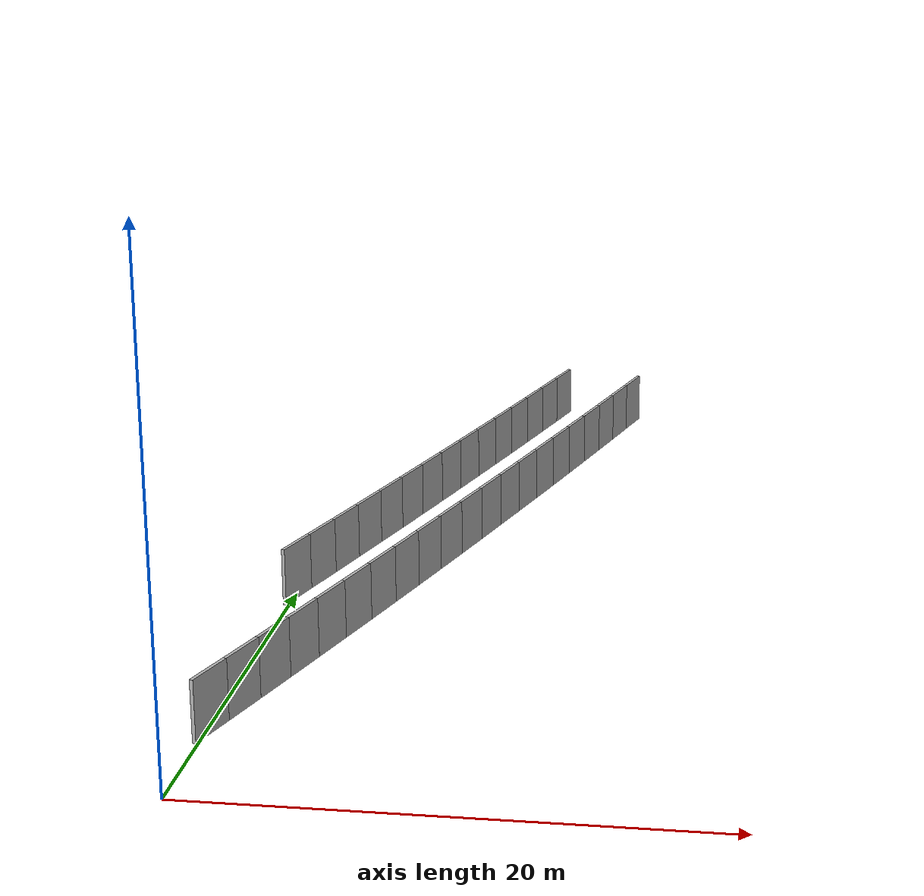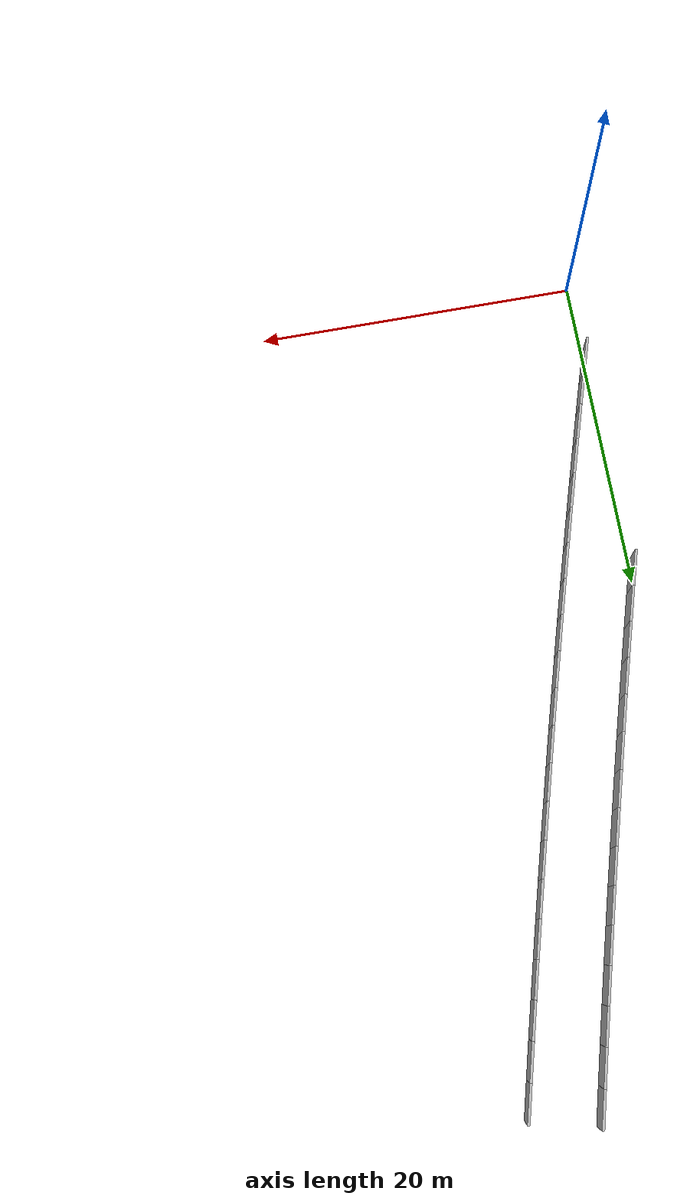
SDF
<?xml version="1.0" ?>
<sdf version="1.6">
  <model name="sps_4619">
    <pose frame="">0 0 0 0 -0 0</pose>
    <static>1</static>
    <self_collide>0</self_collide>
    <allow_auto_disable>0</allow_auto_disable>
    <link name="Wall4421">
      <kinematic>0</kinematic>
      <gravity>1</gravity>
      <self_collide>0</self_collide>
      <collision name="collision">
        <geometry>
          <box>
            <size>2.25479 0.15 2.5</size>
          </box>
        </geometry>
        <pose frame="">0 0 0 0 -0 0</pose>
      </collision>
      <visual name="visual">
        <geometry>
          <box>
            <size>2.25479 0.15 2.5</size>
          </box>
        </geometry>
        <pose frame="">0 0 0 0 -0 0</pose>
        <cast_shadows>1</cast_shadows>
        <transparency>0.0</transparency>
      </visual>
      <pose frame="">0.170951 5.57719 1.25 0 -0 1.27103</pose>
    </link>
    <link name="Wall4422">
      <kinematic>0</kinematic>
      <gravity>1</gravity>
      <self_collide>0</self_collide>
      <collision name="collision">
        <geometry>
          <box>
            <size>2.25459 0.15 2.5</size>
          </box>
        </geometry>
        <pose frame="">0 0 0 0 -0 0</pose>
      </collision>
      <visual name="visual">
        <geometry>
          <box>
            <size>2.25459 0.15 2.5</size>
          </box>
        </geometry>
        <pose frame="">0 0 0 0 -0 0</pose>
        <cast_shadows>1</cast_shadows>
        <transparency>0.0</transparency>
      </visual>
      <pose frame="">0.833976 7.73219 1.25 0 -0 1.27361</pose>
    </link>
    <link name="Wall4423">
      <kinematic>0</kinematic>
      <gravity>1</gravity>
      <self_collide>0</self_collide>
      <collision name="collision">
        <geometry>
          <box>
            <size>2.25476 0.15 2.5</size>
          </box>
        </geometry>
        <pose frame="">0 0 0 0 -0 0</pose>
      </collision>
      <visual name="visual">
        <geometry>
          <box>
            <size>2.25476 0.15 2.5</size>
          </box>
        </geometry>
        <pose frame="">0 0 0 0 -0 0</pose>
        <cast_shadows>1</cast_shadows>
        <transparency>0.0</transparency>
      </visual>
      <pose frame="">1.49178 9.88878 1.25 0 -0 1.27587</pose>
    </link>
    <link name="Wall4424">
      <kinematic>0</kinematic>
      <gravity>1</gravity>
      <self_collide>0</self_collide>
      <collision name="collision">
        <geometry>
          <box>
            <size>2.25459 0.15 2.5</size>
          </box>
        </geometry>
        <pose frame="">0 0 0 0 -0 0</pose>
      </collision>
      <visual name="visual">
        <geometry>
          <box>
            <size>2.25459 0.15 2.5</size>
          </box>
        </geometry>
        <pose frame="">0 0 0 0 -0 0</pose>
        <cast_shadows>1</cast_shadows>
        <transparency>0.0</transparency>
      </visual>
      <pose frame="">2.14455 12.0469 1.25 0 -0 1.27828</pose>
    </link>
    <link name="Wall4425">
      <kinematic>0</kinematic>
      <gravity>1</gravity>
      <self_collide>0</self_collide>
      <collision name="collision">
        <geometry>
          <box>
            <size>2.25451 0.15 2.5</size>
          </box>
        </geometry>
        <pose frame="">0 0 0 0 -0 0</pose>
      </collision>
      <visual name="visual">
        <geometry>
          <box>
            <size>2.25451 0.15 2.5</size>
          </box>
        </geometry>
        <pose frame="">0 0 0 0 -0 0</pose>
        <cast_shadows>1</cast_shadows>
        <transparency>0.0</transparency>
      </visual>
      <pose frame="">2.79223 14.2064 1.25 0 -0 1.28056</pose>
    </link>
    <link name="Wall4426">
      <kinematic>0</kinematic>
      <gravity>1</gravity>
      <self_collide>0</self_collide>
      <collision name="collision">
        <geometry>
          <box>
            <size>2.25473 0.15 2.5</size>
          </box>
        </geometry>
        <pose frame="">0 0 0 0 -0 0</pose>
      </collision>
      <visual name="visual">
        <geometry>
          <box>
            <size>2.25473 0.15 2.5</size>
          </box>
        </geometry>
        <pose frame="">0 0 0 0 -0 0</pose>
        <cast_shadows>1</cast_shadows>
        <transparency>0.0</transparency>
      </visual>
      <pose frame="">3.43484 16.3675 1.25 0 -0 1.28299</pose>
    </link>
    <link name="Wall4427">
      <kinematic>0</kinematic>
      <gravity>1</gravity>
      <self_collide>0</self_collide>
      <collision name="collision">
        <geometry>
          <box>
            <size>2.25454 0.15 2.5</size>
          </box>
        </geometry>
        <pose frame="">0 0 0 0 -0 0</pose>
      </collision>
      <visual name="visual">
        <geometry>
          <box>
            <size>2.25454 0.15 2.5</size>
          </box>
        </geometry>
        <pose frame="">0 0 0 0 -0 0</pose>
        <cast_shadows>1</cast_shadows>
        <transparency>0.0</transparency>
      </visual>
      <pose frame="">4.07214 18.5302 1.25 0 -0 1.28547</pose>
    </link>
    <link name="Wall4428">
      <kinematic>0</kinematic>
      <gravity>1</gravity>
      <self_collide>0</self_collide>
      <collision name="collision">
        <geometry>
          <box>
            <size>2.25473 0.15 2.5</size>
          </box>
        </geometry>
        <pose frame="">0 0 0 0 -0 0</pose>
      </collision>
      <visual name="visual">
        <geometry>
          <box>
            <size>2.25473 0.15 2.5</size>
          </box>
        </geometry>
        <pose frame="">0 0 0 0 -0 0</pose>
        <cast_shadows>1</cast_shadows>
        <transparency>0.0</transparency>
      </visual>
      <pose frame="">4.70434 20.6944 1.25 0 -0 1.2877</pose>
    </link>
    <link name="Wall4429">
      <kinematic>0</kinematic>
      <gravity>1</gravity>
      <self_collide>0</self_collide>
      <collision name="collision">
        <geometry>
          <box>
            <size>2.25463 0.15 2.5</size>
          </box>
        </geometry>
        <pose frame="">0 0 0 0 -0 0</pose>
      </collision>
      <visual name="visual">
        <geometry>
          <box>
            <size>2.25463 0.15 2.5</size>
          </box>
        </geometry>
        <pose frame="">0 0 0 0 -0 0</pose>
        <cast_shadows>1</cast_shadows>
        <transparency>0.0</transparency>
      </visual>
      <pose frame="">5.33144 22.8601 1.25 0 -0 1.29019</pose>
    </link>
    <link name="Wall4430">
      <kinematic>0</kinematic>
      <gravity>1</gravity>
      <self_collide>0</self_collide>
      <collision name="collision">
        <geometry>
          <box>
            <size>2.25473 0.15 2.5</size>
          </box>
        </geometry>
        <pose frame="">0 0 0 0 -0 0</pose>
      </collision>
      <visual name="visual">
        <geometry>
          <box>
            <size>2.25473 0.15 2.5</size>
          </box>
        </geometry>
        <pose frame="">0 0 0 0 -0 0</pose>
        <cast_shadows>1</cast_shadows>
        <transparency>0.0</transparency>
      </visual>
      <pose frame="">5.95336 25.0273 1.25 0 -0 1.29249</pose>
    </link>
    <link name="Wall4431">
      <kinematic>0</kinematic>
      <gravity>1</gravity>
      <self_collide>0</self_collide>
      <collision name="collision">
        <geometry>
          <box>
            <size>2.25452 0.15 2.5</size>
          </box>
        </geometry>
        <pose frame="">0 0 0 0 -0 0</pose>
      </collision>
      <visual name="visual">
        <geometry>
          <box>
            <size>2.25452 0.15 2.5</size>
          </box>
        </geometry>
        <pose frame="">0 0 0 0 -0 0</pose>
        <cast_shadows>1</cast_shadows>
        <transparency>0.0</transparency>
      </visual>
      <pose frame="">6.57027 27.1959 1.25 0 -0 1.29479</pose>
    </link>
    <link name="Wall4432">
      <kinematic>0</kinematic>
      <gravity>1</gravity>
      <self_collide>0</self_collide>
      <collision name="collision">
        <geometry>
          <box>
            <size>2.25476 0.15 2.5</size>
          </box>
        </geometry>
        <pose frame="">0 0 0 0 -0 0</pose>
      </collision>
      <visual name="visual">
        <geometry>
          <box>
            <size>2.25476 0.15 2.5</size>
          </box>
        </geometry>
        <pose frame="">0 0 0 0 -0 0</pose>
        <cast_shadows>1</cast_shadows>
        <transparency>0.0</transparency>
      </visual>
      <pose frame="">7.18185 29.366 1.25 0 -0 1.29741</pose>
    </link>
    <link name="Wall4433">
      <kinematic>0</kinematic>
      <gravity>1</gravity>
      <self_collide>0</self_collide>
      <collision name="collision">
        <geometry>
          <box>
            <size>2.25459 0.15 2.5</size>
          </box>
        </geometry>
        <pose frame="">0 0 0 0 -0 0</pose>
      </collision>
      <visual name="visual">
        <geometry>
          <box>
            <size>2.25459 0.15 2.5</size>
          </box>
        </geometry>
        <pose frame="">0 0 0 0 -0 0</pose>
        <cast_shadows>1</cast_shadows>
        <transparency>0.0</transparency>
      </visual>
      <pose frame="">7.78823 31.5376 1.25 0 -0 1.29958</pose>
    </link>
    <link name="Wall4434">
      <kinematic>0</kinematic>
      <gravity>1</gravity>
      <self_collide>0</self_collide>
      <collision name="collision">
        <geometry>
          <box>
            <size>2.25457 0.15 2.5</size>
          </box>
        </geometry>
        <pose frame="">0 0 0 0 -0 0</pose>
      </collision>
      <visual name="visual">
        <geometry>
          <box>
            <size>2.25457 0.15 2.5</size>
          </box>
        </geometry>
        <pose frame="">0 0 0 0 -0 0</pose>
        <cast_shadows>1</cast_shadows>
        <transparency>0.0</transparency>
      </visual>
      <pose frame="">8.38955 33.7105 1.25 0 -0 1.30205</pose>
    </link>
    <link name="Wall4435">
      <kinematic>0</kinematic>
      <gravity>1</gravity>
      <self_collide>0</self_collide>
      <collision name="collision">
        <geometry>
          <box>
            <size>2.25435 0.15 2.5</size>
          </box>
        </geometry>
        <pose frame="">0 0 0 0 -0 0</pose>
      </collision>
      <visual name="visual">
        <geometry>
          <box>
            <size>2.25435 0.15 2.5</size>
          </box>
        </geometry>
        <pose frame="">0 0 0 0 -0 0</pose>
        <cast_shadows>1</cast_shadows>
        <transparency>0.0</transparency>
      </visual>
      <pose frame="">8.98565 35.8847 1.25 0 -0 1.30436</pose>
    </link>
    <link name="Wall4436">
      <kinematic>0</kinematic>
      <gravity>1</gravity>
      <self_collide>0</self_collide>
      <collision name="collision">
        <geometry>
          <box>
            <size>2.25471 0.15 2.5</size>
          </box>
        </geometry>
        <pose frame="">0 0 0 0 -0 0</pose>
      </collision>
      <visual name="visual">
        <geometry>
          <box>
            <size>2.25471 0.15 2.5</size>
          </box>
        </geometry>
        <pose frame="">0 0 0 0 -0 0</pose>
        <cast_shadows>1</cast_shadows>
        <transparency>0.0</transparency>
      </visual>
      <pose frame="">9.57665 38.0604 1.25 0 -0 1.30676</pose>
    </link>
    <link name="Wall4437">
      <kinematic>0</kinematic>
      <gravity>1</gravity>
      <self_collide>0</self_collide>
      <collision name="collision">
        <geometry>
          <box>
            <size>2.25466 0.15 2.5</size>
          </box>
        </geometry>
        <pose frame="">0 0 0 0 -0 0</pose>
      </collision>
      <visual name="visual">
        <geometry>
          <box>
            <size>2.25466 0.15 2.5</size>
          </box>
        </geometry>
        <pose frame="">0 0 0 0 -0 0</pose>
        <cast_shadows>1</cast_shadows>
        <transparency>0.0</transparency>
      </visual>
      <pose frame="">10.1624 40.2377 1.25 0 -0 1.30925</pose>
    </link>
    <link name="Wall4438">
      <kinematic>0</kinematic>
      <gravity>1</gravity>
      <self_collide>0</self_collide>
      <collision name="collision">
        <geometry>
          <box>
            <size>2.25455 0.15 2.5</size>
          </box>
        </geometry>
        <pose frame="">0 0 0 0 -0 0</pose>
      </collision>
      <visual name="visual">
        <geometry>
          <box>
            <size>2.25455 0.15 2.5</size>
          </box>
        </geometry>
        <pose frame="">0 0 0 0 -0 0</pose>
        <cast_shadows>1</cast_shadows>
        <transparency>0.0</transparency>
      </visual>
      <pose frame="">10.7429 42.4163 1.25 0 -0 1.31153</pose>
    </link>
    <link name="Wall4439">
      <kinematic>0</kinematic>
      <gravity>1</gravity>
      <self_collide>0</self_collide>
      <collision name="collision">
        <geometry>
          <box>
            <size>2.25457 0.15 2.5</size>
          </box>
        </geometry>
        <pose frame="">0 0 0 0 -0 0</pose>
      </collision>
      <visual name="visual">
        <geometry>
          <box>
            <size>2.25457 0.15 2.5</size>
          </box>
        </geometry>
        <pose frame="">0 0 0 0 -0 0</pose>
        <cast_shadows>1</cast_shadows>
        <transparency>0.0</transparency>
      </visual>
      <pose frame="">11.3183 44.5962 1.25 0 -0 1.31394</pose>
    </link>
    <link name="Wall4440">
      <kinematic>0</kinematic>
      <gravity>1</gravity>
      <self_collide>0</self_collide>
      <collision name="collision">
        <geometry>
          <box>
            <size>2.25463 0.15 2.5</size>
          </box>
        </geometry>
        <pose frame="">0 0 0 0 -0 0</pose>
      </collision>
      <visual name="visual">
        <geometry>
          <box>
            <size>2.25463 0.15 2.5</size>
          </box>
        </geometry>
        <pose frame="">0 0 0 0 -0 0</pose>
        <cast_shadows>1</cast_shadows>
        <transparency>0.0</transparency>
      </visual>
      <pose frame="">11.8884 46.7775 1.25 0 -0 1.3163</pose>
    </link>
    <link name="Wall4441">
      <kinematic>0</kinematic>
      <gravity>1</gravity>
      <self_collide>0</self_collide>
      <collision name="collision">
        <geometry>
          <box>
            <size>2.25478 0.15 2.5</size>
          </box>
        </geometry>
        <pose frame="">0 0 0 0 -0 0</pose>
      </collision>
      <visual name="visual">
        <geometry>
          <box>
            <size>2.25478 0.15 2.5</size>
          </box>
        </geometry>
        <pose frame="">0 0 0 0 -0 0</pose>
        <cast_shadows>1</cast_shadows>
        <transparency>0.0</transparency>
      </visual>
      <pose frame="">12.4537 48.9602 1.25 0 -0 1.31852</pose>
    </link>
    <link name="Wall6152">
      <kinematic>0</kinematic>
      <gravity>1</gravity>
      <self_collide>0</self_collide>
      <collision name="collision">
        <geometry>
          <box>
            <size>2.24491 0.15 2.5</size>
          </box>
        </geometry>
        <pose frame="">0 0 0 0 -0 0</pose>
      </collision>
      <visual name="visual">
        <geometry>
          <box>
            <size>2.24491 0.15 2.5</size>
          </box>
        </geometry>
        <pose frame="">0 0 0 0 -0 0</pose>
        <cast_shadows>1</cast_shadows>
        <transparency>0.0</transparency>
      </visual>
      <pose frame="">0.100364 19.6957 1.25 0 -0 1.28532</pose>
    </link>
    <link name="Wall6153">
      <kinematic>0</kinematic>
      <gravity>1</gravity>
      <self_collide>0</self_collide>
      <collision name="collision">
        <geometry>
          <box>
            <size>2.2448 0.15 2.5</size>
          </box>
        </geometry>
        <pose frame="">0 0 0 0 -0 0</pose>
      </collision>
      <visual name="visual">
        <geometry>
          <box>
            <size>2.2448 0.15 2.5</size>
          </box>
        </geometry>
        <pose frame="">0 0 0 0 -0 0</pose>
        <cast_shadows>1</cast_shadows>
        <transparency>0.0</transparency>
      </visual>
      <pose frame="">0.729759 21.8505 1.25 0 -0 1.28791</pose>
    </link>
    <link name="Wall6154">
      <kinematic>0</kinematic>
      <gravity>1</gravity>
      <self_collide>0</self_collide>
      <collision name="collision">
        <geometry>
          <box>
            <size>2.24488 0.15 2.5</size>
          </box>
        </geometry>
        <pose frame="">0 0 0 0 -0 0</pose>
      </collision>
      <visual name="visual">
        <geometry>
          <box>
            <size>2.24488 0.15 2.5</size>
          </box>
        </geometry>
        <pose frame="">0 0 0 0 -0 0</pose>
        <cast_shadows>1</cast_shadows>
        <transparency>0.0</transparency>
      </visual>
      <pose frame="">1.35406 24.0068 1.25 0 -0 1.29004</pose>
    </link>
    <link name="Wall6155">
      <kinematic>0</kinematic>
      <gravity>1</gravity>
      <self_collide>0</self_collide>
      <collision name="collision">
        <geometry>
          <box>
            <size>2.24503 0.15 2.5</size>
          </box>
        </geometry>
        <pose frame="">0 0 0 0 -0 0</pose>
      </collision>
      <visual name="visual">
        <geometry>
          <box>
            <size>2.24503 0.15 2.5</size>
          </box>
        </geometry>
        <pose frame="">0 0 0 0 -0 0</pose>
        <cast_shadows>1</cast_shadows>
        <transparency>0.0</transparency>
      </visual>
      <pose frame="">1.97347 26.1646 1.25 0 -0 1.29247</pose>
    </link>
    <link name="Wall6156">
      <kinematic>0</kinematic>
      <gravity>1</gravity>
      <self_collide>0</self_collide>
      <collision name="collision">
        <geometry>
          <box>
            <size>2.24466 0.15 2.5</size>
          </box>
        </geometry>
        <pose frame="">0 0 0 0 -0 0</pose>
      </collision>
      <visual name="visual">
        <geometry>
          <box>
            <size>2.24466 0.15 2.5</size>
          </box>
        </geometry>
        <pose frame="">0 0 0 0 -0 0</pose>
        <cast_shadows>1</cast_shadows>
        <transparency>0.0</transparency>
      </visual>
      <pose frame="">2.58758 28.3238 1.25 0 -0 1.29494</pose>
    </link>
    <link name="Wall6157">
      <kinematic>0</kinematic>
      <gravity>1</gravity>
      <self_collide>0</self_collide>
      <collision name="collision">
        <geometry>
          <box>
            <size>2.24483 0.15 2.5</size>
          </box>
        </geometry>
        <pose frame="">0 0 0 0 -0 0</pose>
      </collision>
      <visual name="visual">
        <geometry>
          <box>
            <size>2.24483 0.15 2.5</size>
          </box>
        </geometry>
        <pose frame="">0 0 0 0 -0 0</pose>
        <cast_shadows>1</cast_shadows>
        <transparency>0.0</transparency>
      </visual>
      <pose frame="">3.19646 30.4844 1.25 0 -0 1.29727</pose>
    </link>
    <link name="Wall6158">
      <kinematic>0</kinematic>
      <gravity>1</gravity>
      <self_collide>0</self_collide>
      <collision name="collision">
        <geometry>
          <box>
            <size>2.24461 0.15 2.5</size>
          </box>
        </geometry>
        <pose frame="">0 0 0 0 -0 0</pose>
      </collision>
      <visual name="visual">
        <geometry>
          <box>
            <size>2.24461 0.15 2.5</size>
          </box>
        </geometry>
        <pose frame="">0 0 0 0 -0 0</pose>
        <cast_shadows>1</cast_shadows>
        <transparency>0.0</transparency>
      </visual>
      <pose frame="">3.80025 32.6464 1.25 0 -0 1.29965</pose>
    </link>
    <link name="Wall6159">
      <kinematic>0</kinematic>
      <gravity>1</gravity>
      <self_collide>0</self_collide>
      <collision name="collision">
        <geometry>
          <box>
            <size>2.24481 0.15 2.5</size>
          </box>
        </geometry>
        <pose frame="">0 0 0 0 -0 0</pose>
      </collision>
      <visual name="visual">
        <geometry>
          <box>
            <size>2.24481 0.15 2.5</size>
          </box>
        </geometry>
        <pose frame="">0 0 0 0 -0 0</pose>
        <cast_shadows>1</cast_shadows>
        <transparency>0.0</transparency>
      </visual>
      <pose frame="">4.39886 34.8098 1.25 0 -0 1.30207</pose>
    </link>
    <link name="Wall6160">
      <kinematic>0</kinematic>
      <gravity>1</gravity>
      <self_collide>0</self_collide>
      <collision name="collision">
        <geometry>
          <box>
            <size>2.2445 0.15 2.5</size>
          </box>
        </geometry>
        <pose frame="">0 0 0 0 -0 0</pose>
      </collision>
      <visual name="visual">
        <geometry>
          <box>
            <size>2.2445 0.15 2.5</size>
          </box>
        </geometry>
        <pose frame="">0 0 0 0 -0 0</pose>
        <cast_shadows>1</cast_shadows>
        <transparency>0.0</transparency>
      </visual>
      <pose frame="">4.99227 36.9746 1.25 0 -0 1.30443</pose>
    </link>
    <link name="Wall6161">
      <kinematic>0</kinematic>
      <gravity>1</gravity>
      <self_collide>0</self_collide>
      <collision name="collision">
        <geometry>
          <box>
            <size>2.24482 0.15 2.5</size>
          </box>
        </geometry>
        <pose frame="">0 0 0 0 -0 0</pose>
      </collision>
      <visual name="visual">
        <geometry>
          <box>
            <size>2.24482 0.15 2.5</size>
          </box>
        </geometry>
        <pose frame="">0 0 0 0 -0 0</pose>
        <cast_shadows>1</cast_shadows>
        <transparency>0.0</transparency>
      </visual>
      <pose frame="">5.58056 39.1408 1.25 0 -0 1.3068</pose>
    </link>
    <link name="Wall6162">
      <kinematic>0</kinematic>
      <gravity>1</gravity>
      <self_collide>0</self_collide>
      <collision name="collision">
        <geometry>
          <box>
            <size>2.24501 0.15 2.5</size>
          </box>
        </geometry>
        <pose frame="">0 0 0 0 -0 0</pose>
      </collision>
      <visual name="visual">
        <geometry>
          <box>
            <size>2.24501 0.15 2.5</size>
          </box>
        </geometry>
        <pose frame="">0 0 0 0 -0 0</pose>
        <cast_shadows>1</cast_shadows>
        <transparency>0.0</transparency>
      </visual>
      <pose frame="">6.16384 41.3086 1.25 0 -0 1.30911</pose>
    </link>
    <link name="Wall6163">
      <kinematic>0</kinematic>
      <gravity>1</gravity>
      <self_collide>0</self_collide>
      <collision name="collision">
        <geometry>
          <box>
            <size>2.24468 0.15 2.5</size>
          </box>
        </geometry>
        <pose frame="">0 0 0 0 -0 0</pose>
      </collision>
      <visual name="visual">
        <geometry>
          <box>
            <size>2.24468 0.15 2.5</size>
          </box>
        </geometry>
        <pose frame="">0 0 0 0 -0 0</pose>
        <cast_shadows>1</cast_shadows>
        <transparency>0.0</transparency>
      </visual>
      <pose frame="">6.74206 43.4777 1.25 0 -0 1.31146</pose>
    </link>
    <link name="Wall6164">
      <kinematic>0</kinematic>
      <gravity>1</gravity>
      <self_collide>0</self_collide>
      <collision name="collision">
        <geometry>
          <box>
            <size>2.24483 0.15 2.5</size>
          </box>
        </geometry>
        <pose frame="">0 0 0 0 -0 0</pose>
      </collision>
      <visual name="visual">
        <geometry>
          <box>
            <size>2.24483 0.15 2.5</size>
          </box>
        </geometry>
        <pose frame="">0 0 0 0 -0 0</pose>
        <cast_shadows>1</cast_shadows>
        <transparency>0.0</transparency>
      </visual>
      <pose frame="">7.31496 45.6481 1.25 0 -0 1.31398</pose>
    </link>
    <link name="Wall6165">
      <kinematic>0</kinematic>
      <gravity>1</gravity>
      <self_collide>0</self_collide>
      <collision name="collision">
        <geometry>
          <box>
            <size>2.24468 0.15 2.5</size>
          </box>
        </geometry>
        <pose frame="">0 0 0 0 -0 0</pose>
      </collision>
      <visual name="visual">
        <geometry>
          <box>
            <size>2.24468 0.15 2.5</size>
          </box>
        </geometry>
        <pose frame="">0 0 0 0 -0 0</pose>
        <cast_shadows>1</cast_shadows>
        <transparency>0.0</transparency>
      </visual>
      <pose frame="">7.88265 47.8199 1.25 0 -0 1.31627</pose>
    </link>
    <link name="Wall6166">
      <kinematic>0</kinematic>
      <gravity>1</gravity>
      <self_collide>0</self_collide>
      <collision name="collision">
        <geometry>
          <box>
            <size>2.2448 0.15 2.5</size>
          </box>
        </geometry>
        <pose frame="">0 0 0 0 -0 0</pose>
      </collision>
      <visual name="visual">
        <geometry>
          <box>
            <size>2.2448 0.15 2.5</size>
          </box>
        </geometry>
        <pose frame="">0 0 0 0 -0 0</pose>
        <cast_shadows>1</cast_shadows>
        <transparency>0.0</transparency>
      </visual>
      <pose frame="">8.44524 49.993 1.25 0 -0 1.31867</pose>
    </link>
  </model>
</sdf>
